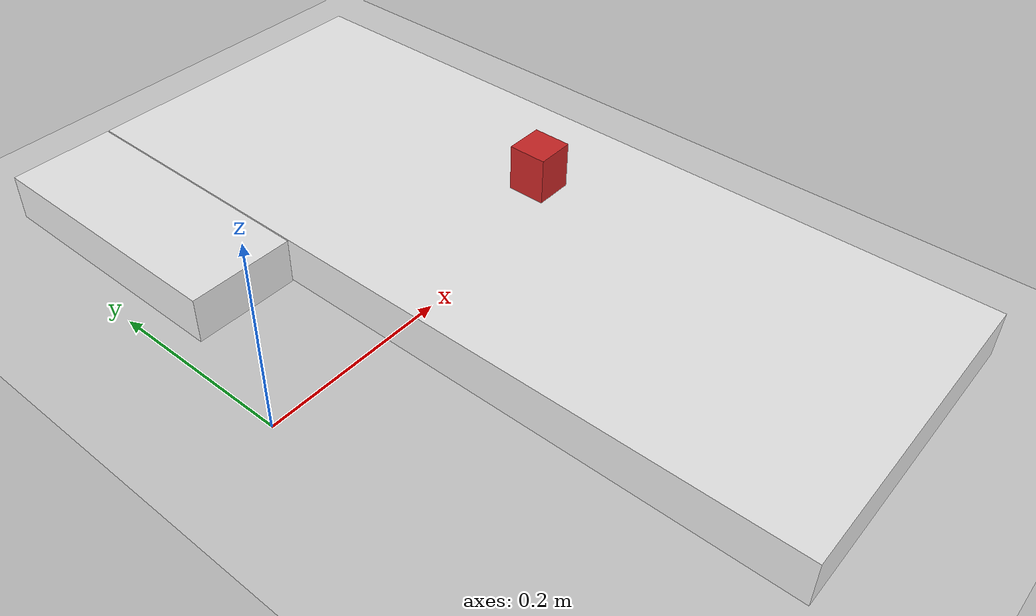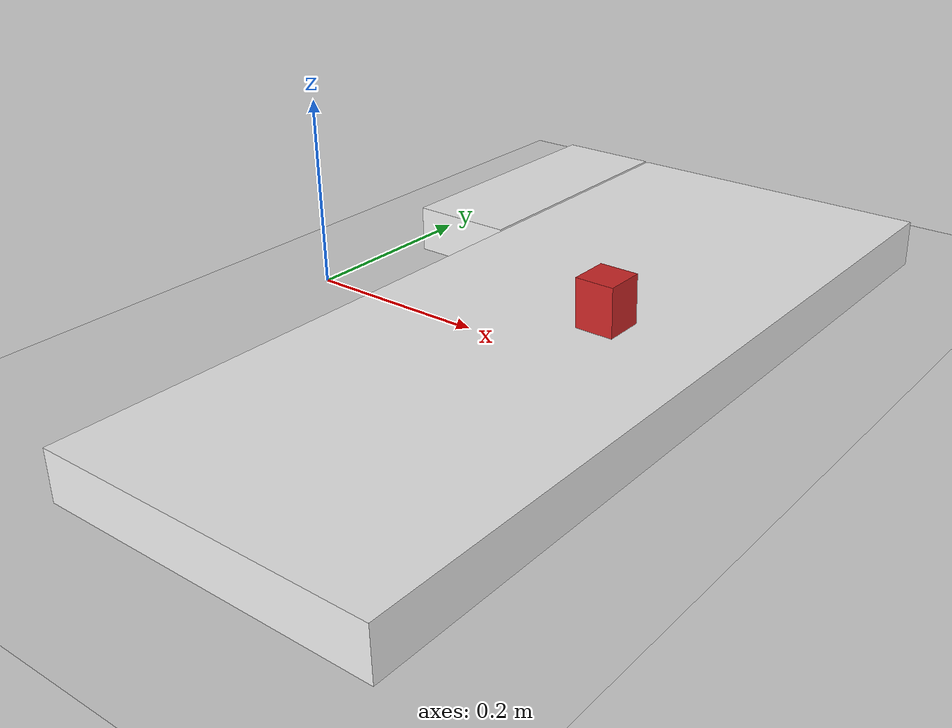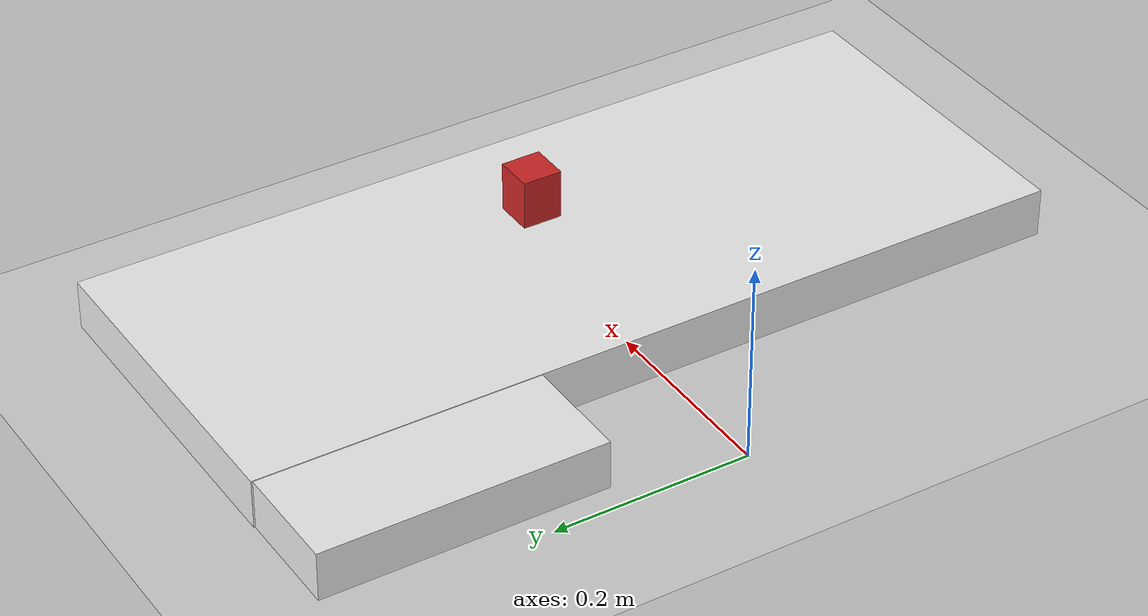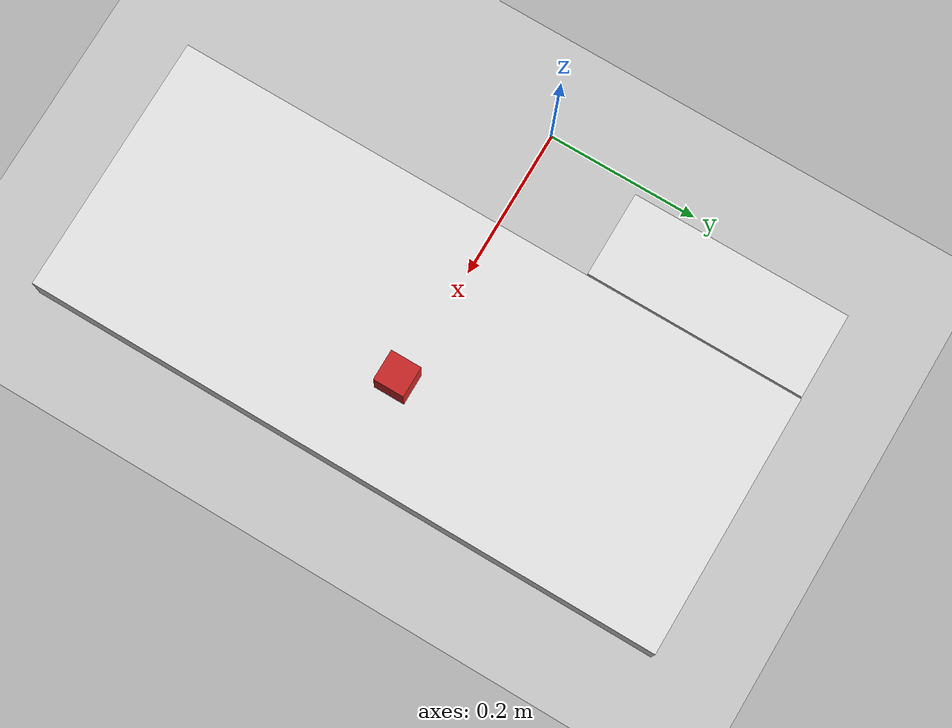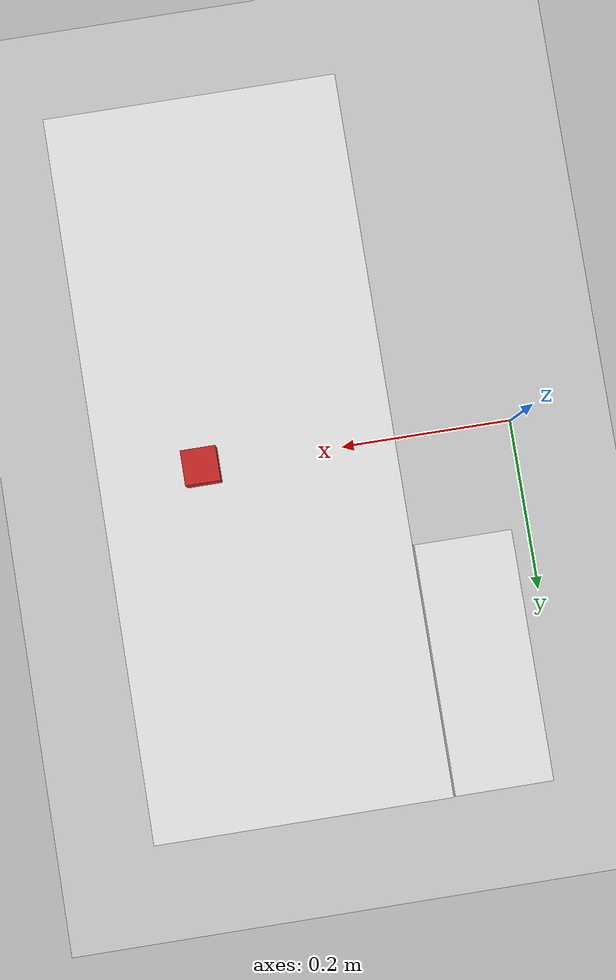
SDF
<sdf version="1.6">
 <world name="default">
  <light name="sun" type="directional">
   <pose>0 0 10 0 -0 0</pose>
   <diffuse>0.8 0.8 0.8 1</diffuse>
   <specular>0.2 0.2 0.2 1</specular>
   <attenuation>
    <range>1000</range>
    <constant>0.9</constant>
    <linear>0.01</linear>
    <quadratic>0.001</quadratic>
   </attenuation>
   <direction>-0.5 0.1 -0.9</direction>
  </light>
  <model name="ground_plane">
   <static>1</static>
   <link name="link">
    <collision name="collision">
     <geometry><plane><normal>0 0 1</normal><size>100 100</size></plane></geometry>
     <surface>
      <contact><collide_bitmask>65535</collide_bitmask></contact>
      <friction><ode><mu>100</mu><mu2>50</mu2></ode></friction>
     </surface>
    </collision>
    <visual name="visual">
     <cast_shadows>0</cast_shadows>
     <geometry><plane><normal>0 0 1</normal><size>100 100</size></plane></geometry>
     <material>
      <script><uri>file://media/materials/scripts/gazebo.material</uri><name>Gazebo/Grey</name></script>
     </material>
    </visual>
   </link>
  </model>
  <gravity>0 0 -9.8</gravity>
  <magnetic_field>6e-06 2.3e-05 -4.2e-05</magnetic_field>
  <atmosphere type="adiabatic"/>
  <physics name="default_physics" default="0" type="bullet">
   <max_step_size>0.001</max_step_size>
   <real_time_factor>1</real_time_factor>
   <real_time_update_rate>1000</real_time_update_rate>
  </physics>
  <scene><ambient>0.4 0.4 0.4 1</ambient><background>0.7 0.7 0.7 1</background><shadows>1</shadows></scene>
  <audio><device>default</device></audio>
  <spherical_coordinates>
   <surface_model>EARTH_WGS84</surface_model>
   <latitude_deg>0</latitude_deg>
   <longitude_deg>0</longitude_deg>
   <elevation>0</elevation>
   <heading_deg>0</heading_deg>
  </spherical_coordinates>
  <model name="unit_box">
   <static>1</static>
   <pose>0.31249 -0.00671 0.024991 0 -0 0</pose>
   <link name="link">
    <inertial>
     <mass>1</mass>
     <inertia>
      <ixx>0.166667</ixx>
      <ixy>0</ixy>
      <ixz>0</ixz>
      <iyy>0.166667</iyy>
      <iyz>0</iyz>
      <izz>0.166667</izz>
     </inertia>
    </inertial>
    <collision name="collision">
     <geometry><box><size>0.343762 0.844976 0.049982</size></box></geometry>
     <surface><friction><ode><mu>100</mu><mu2>50</mu2></ode></friction></surface>
    </collision>
    <visual name="visual">
     <geometry><box><size>0.343762 0.844976 0.049982</size></box></geometry>
     <material>
      <script><name>Gazebo/White</name><uri>file://media/materials/scripts/gazebo.material</uri></script>
     </material>
    </visual>
   </link>
  </model>
  <model name="unit_box_0">
   <pose>0.363757 0.001726 0.074982 2e-06 -0 0.00064</pose>
   <link name="link">
    <inertial>
     <mass>0.01</mass>
     <inertia>
      <ixx>0.0166667</ixx>
      <ixy>0</ixy>
      <ixz>0</ixz>
      <iyy>0.0166667</iyy>
      <iyz>0</iyz>
      <izz>0.0166667</izz>
     </inertia>
    </inertial>
    <collision name="collision">
     <geometry><box><size>0.04 0.04 0.05</size></box></geometry>
     <surface>
      <friction><ode><mu>200</mu><mu2>100</mu2><fdir1>0 0 1</fdir1><slip1>0</slip1><slip2>0</slip2></ode></friction>
      <contact><ode><min_depth>0.005</min_depth><kp>100000</kp></ode></contact>
     </surface>
    </collision>
    <visual name="visual">
     <geometry><box><size>0.04 0.04 0.05</size></box></geometry>
     <material>
      <script><name>Gazebo/Red</name><uri>file://media/materials/scripts/gazebo.material</uri></script>
     </material>
    </visual>
    <velocity_decay><linear>0.001</linear><angular>0.001</angular></velocity_decay>
   </link>
  </model>
  <model name="unit_box_clone">
   <static>1</static>
   <pose>0.082205 0.270949 0.025818 0 -0 1.5708</pose>
   <link name="link">
    <inertial>
     <mass>1</mass>
     <inertia>
      <ixx>0.166667</ixx>
      <ixy>0</ixy>
      <ixz>0</ixz>
      <iyy>0.166667</iyy>
      <iyz>0</iyz>
      <izz>0.166667</izz>
     </inertia>
    </inertial>
    <collision name="collision">
     <geometry><box><size>0.288013 0.112925 0.049982</size></box></geometry>
     <surface><friction><ode><mu>100</mu><mu2>50</mu2></ode></friction></surface>
    </collision>
    <visual name="visual">
     <geometry><box><size>0.288013 0.112925 0.049982</size></box></geometry>
     <material>
      <script><name>Gazebo/White</name><uri>file://media/materials/scripts/gazebo.material</uri></script>
     </material>
    </visual>
   </link>
  </model>
 </world>
</sdf>
